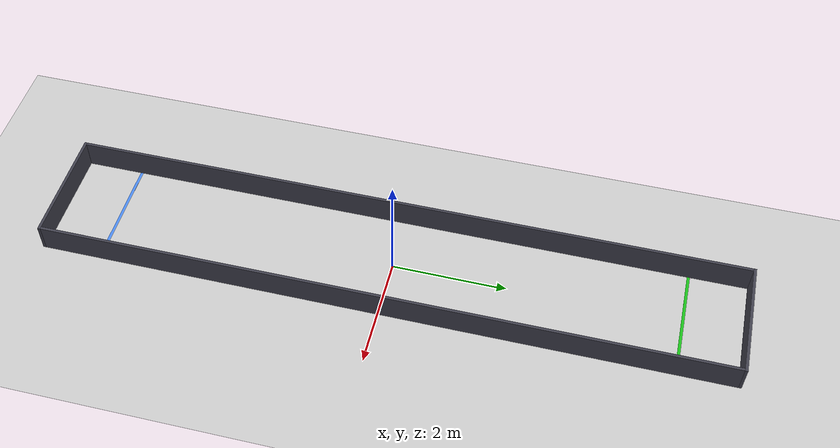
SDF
<?xml version="1.0" ?>
<sdf version="1.6">
  <world name="hallway">

    <!-- standard sun + ground -->
    <include><uri>model://sun</uri></include>
    <include><uri>model://ground_plane</uri></include>

    <!-- physics: keep defaults; the velocity plugin sets velocities directly -->
    <physics name="default_physics" default="true" type="ode">
      <max_step_size>0.001</max_step_size>
      <real_time_update_rate>1000</real_time_update_rate>
      <real_time_factor>1.0</real_time_factor>
    </physics>

    <!-- left wall at x = -1.0 -->
    <model name="wall_left">
      <static>true</static>
      <pose>-1.025 0 0.25 0 0 0</pose>
      <link name="link">
        <collision name="col">
          <geometry><box><size>0.05 12.0 0.5</size></box></geometry>
        </collision>
        <visual name="vis">
          <geometry><box><size>0.05 12.0 0.5</size></box></geometry>
          <material>
            <ambient>0.15 0.15 0.18 1</ambient>
            <diffuse>0.25 0.25 0.30 1</diffuse>
          </material>
        </visual>
      </link>
    </model>

    <!-- right wall at x = +1.0 -->
    <model name="wall_right">
      <static>true</static>
      <pose>1.025 0 0.25 0 0 0</pose>
      <link name="link">
        <collision name="col">
          <geometry><box><size>0.05 12.0 0.5</size></box></geometry>
        </collision>
        <visual name="vis">
          <geometry><box><size>0.05 12.0 0.5</size></box></geometry>
          <material>
            <ambient>0.15 0.15 0.18 1</ambient>
            <diffuse>0.25 0.25 0.30 1</diffuse>
          </material>
        </visual>
      </link>
    </model>

    <!-- back cap at y = -6.0 (behind spawn line). Soft Y-clip in pygame is at
         +/- 6.0; physical caps prevent robots rolling out forever in Gazebo. -->
    <model name="wall_back">
      <static>true</static>
      <pose>0 -6.025 0.25 0 0 0</pose>
      <link name="link">
        <collision name="col">
          <geometry><box><size>2.1 0.05 0.5</size></box></geometry>
        </collision>
        <visual name="vis">
          <geometry><box><size>2.1 0.05 0.5</size></box></geometry>
          <material>
            <ambient>0.15 0.15 0.18 1</ambient>
            <diffuse>0.25 0.25 0.30 1</diffuse>
          </material>
        </visual>
      </link>
    </model>

    <!-- front cap at y = +6.0 (past goal line) -->
    <model name="wall_front">
      <static>true</static>
      <pose>0 6.025 0.25 0 0 0</pose>
      <link name="link">
        <collision name="col">
          <geometry><box><size>2.1 0.05 0.5</size></box></geometry>
        </collision>
        <visual name="vis">
          <geometry><box><size>2.1 0.05 0.5</size></box></geometry>
          <material>
            <ambient>0.15 0.15 0.18 1</ambient>
            <diffuse>0.25 0.25 0.30 1</diffuse>
          </material>
        </visual>
      </link>
    </model>

    <!-- visual-only spawn line (blue) at y = -5 -->
    <model name="spawn_line">
      <static>true</static>
      <pose>0 -5.0 0.001 0 0 0</pose>
      <link name="link">
        <visual name="vis">
          <geometry><box><size>2.0 0.05 0.001</size></box></geometry>
          <material>
            <ambient>0.2 0.4 0.8 1</ambient>
            <diffuse>0.3 0.55 0.95 1</diffuse>
          </material>
        </visual>
      </link>
    </model>

    <!-- visual-only goal line (green) at y = +5 -->
    <model name="goal_line">
      <static>true</static>
      <pose>0 5.0 0.001 0 0 0</pose>
      <link name="link">
        <visual name="vis">
          <geometry><box><size>2.0 0.05 0.001</size></box></geometry>
          <material>
            <ambient>0.0 0.55 0.0 1</ambient>
            <diffuse>0.1 0.75 0.1 1</diffuse>
          </material>
        </visual>
      </link>
    </model>

    <!-- nicer default camera: looks down the hallway from behind spawn -->
    <gui>
      <camera name="default_camera">
        <pose>0 -9 4 0 0.45 1.5708</pose>
      </camera>
    </gui>

  </world>
</sdf>
